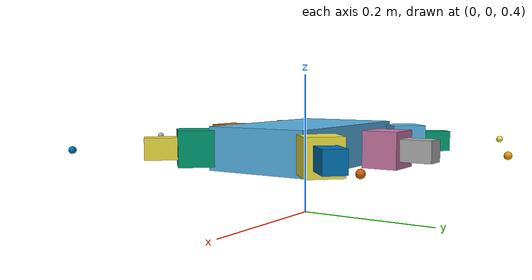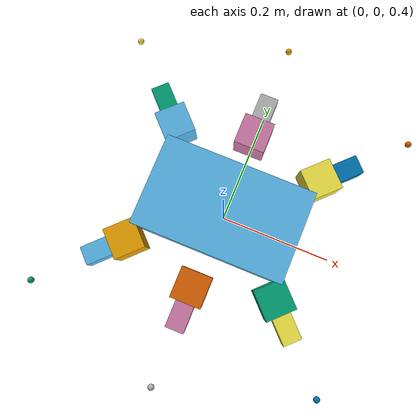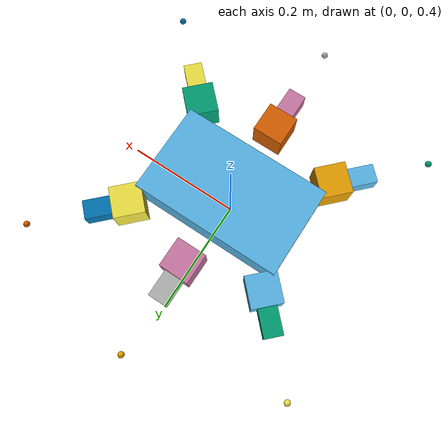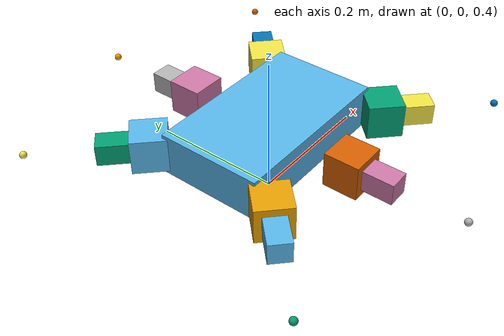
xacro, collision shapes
<?xml version="1.0" encoding="UTF-8" ?>
<robot xmlns:xacro="http://ros.org/wiki/xacro" name="Golem">

<link name="base_footprint"/>

<joint name="base_joint" type="fixed">
    <parent link="base_footprint"/><child link="base_link"/>
    <origin xyz="0 0 0.5" rpy="0 0 0"/>
</joint>

<link name="base_link">
    <visual><geometry><mesh filename="file:///root/colcon_ws/src/hexapod_description/meshes/phantomX/body.stl" scale="0.001 0.001 0.001"/></geometry></visual>
    <collision><geometry><box size="0.25 0.15 0.06"/></geometry></collision>
    <inertial><mass value="1.0"/> <inertia ixx="0.01" ixy="0" ixz="0" iyy="0.01" iyz="0" izz="0.02"/></inertial>
</link>

<xacro:macro name="leg" params="side position x y angle">

    <joint name="coxa_joint_${side}${position}" type="revolute">
        <parent link="base_link"/><child link="coxa_${side}${position}"/><origin xyz="${x} ${y} 0" rpy="0 0 ${angle}"/><axis xyz="0 0 1"/>
        <limit lower="-1.57" upper="1.57" effort="200.0" velocity="2.0"/>
        <dynamics damping="0.5" friction="0.2"/>
    </joint>

    <link name="coxa_${side}${position}">
        <visual><geometry><mesh filename="file:///root/colcon_ws/src/hexapod_description/meshes/phantomX/coxa.stl" scale="0.001 0.001 0.001"/></geometry></visual>
        <collision><geometry><box size="0.05 0.05 0.05"/></geometry></collision>
        <inertial><mass value="0.05"/><inertia ixx="0.0001" ixy="0" ixz="0" iyy="0.0001" iyz="0" izz="0.0001"/></inertial>
    </link>

    <joint name="femur_joint_${side}${position}" type="revolute">
        <origin xyz="0.029 0 0" rpy="-1.5707 0 0"/><parent link="coxa_${side}${position}"/><child link="femur_${side}${position}"/><axis xyz="0 0 1"/>
        <limit lower="-1.57" upper="1.57" effort="200.0" velocity="2.0"/>
        <dynamics damping="0.5" friction="0.2"/>
    </joint>

    <link name="femur_${side}${position}">
        <visual><geometry><mesh filename="file:///root/colcon_ws/src/hexapod_description/meshes/phantomX/femur.stl" scale="0.001 0.001 0.001"/></geometry></visual>
        <collision><geometry><box size="0.08 0.03 0.03"/></geometry></collision>
        <inertial><mass value="0.05"/><inertia ixx="0.0001" ixy="0" ixz="0" iyy="0.0001" iyz="0" izz="0.0001"/></inertial>
    </link>

    <joint name="tibia_joint_${side}${position}" type="revolute">
        <origin xyz="0.082 0 0" rpy="0 0 0"/><parent link="femur_${side}${position}"/><child link="tibia_${side}${position}"/><axis xyz="0 0 1"/>
        <limit lower="-1.57" upper="1.57" effort="200.0" velocity="2.0"/>
        <dynamics damping="0.5" friction="0.2"/>
    </joint>

    <link name="tibia_${side}${position}">
        <visual><geometry><mesh filename="file:///root/colcon_ws/src/hexapod_description/meshes/phantomX/tibia.stl" scale="0.001 0.001 0.001"/></geometry></visual>
        <collision><origin xyz="0.05 0 0" rpy="0 0 0"/> <geometry><sphere radius="0.005"/></geometry> </collision>
        <inertial><mass value="0.05"/><inertia ixx="0.0001" ixy="0" ixz="0" iyy="0.0001" iyz="0" izz="0.0001"/></inertial>
    </link>

    <gazebo reference="tibia_${side}${position}">
        <mu1>2.0</mu1><mu2>2.0</mu2>
        <kp>50000.0</kp>
        <kd>10.0</kd>
        <minDepth>0.001</minDepth>
        <maxVel>0.0</maxVel>
    </gazebo>
</xacro:macro>

<xacro:leg side="R" position="F" x="0.124" y="-0.10" angle="-0.785"/>
<xacro:leg side="R" position="M" x="0.0" y="-0.13" angle="-1.57"/>
<xacro:leg side="R" position="R" x="-0.124" y="-0.10" angle="-2.35"/>
<xacro:leg side="L" position="F" x="0.124" y="0.10" angle="0.785"/>
<xacro:leg side="L" position="M" x="0.0" y="0.13" angle="1.57"/>
<xacro:leg side="L" position="R" x="-0.124" y="0.10" angle="2.35"/>

<ros2_control name="GazeboSystem" type="system">
    <hardware><plugin>gazebo_ros2_control/GazeboSystem</plugin></hardware>
    <xacro:macro name="j" params="n"><joint name="${n}"><command_interface name="position"/><state_interface name="position"/><state_interface name="velocity"/></joint></xacro:macro>
    <xacro:j n="coxa_joint_RF"/><xacro:j n="femur_joint_RF"/><xacro:j n="tibia_joint_RF"/>
    <xacro:j n="coxa_joint_LF"/><xacro:j n="femur_joint_LF"/><xacro:j n="tibia_joint_LF"/>
    <xacro:j n="coxa_joint_RM"/><xacro:j n="femur_joint_RM"/><xacro:j n="tibia_joint_RM"/>
    <xacro:j n="coxa_joint_LM"/><xacro:j n="femur_joint_LM"/><xacro:j n="tibia_joint_LM"/>
    <xacro:j n="coxa_joint_RR"/><xacro:j n="femur_joint_RR"/><xacro:j n="tibia_joint_RR"/>
    <xacro:j n="coxa_joint_LR"/><xacro:j n="femur_joint_LR"/><xacro:j n="tibia_joint_LR"/>
</ros2_control>

<gazebo>
    <plugin name="gazebo_ros2_control" filename="libgazebo_ros2_control.so">
        <parameters>/root/colcon_ws/src/hexapod_gazebo/config/phantomx_control.yaml</parameters>
    </plugin>
</gazebo>

<link name="lidar_link">
    <inertial><mass value="0.05"/><inertia ixx="0.001" ixy="0" ixz="0" iyy="0.001" iyz="0" izz="0.001"/></inertial>
    <visual><geometry><cylinder radius="0.05" length="0.04"/></geometry></visual>
</link>

<joint name="lidar_joint" type="fixed">
    <parent link="base_link"/><child link="lidar_link"/><origin xyz="0 0 0.1" rpy="0 0 0"/>
</joint>

<gazebo reference="lidar_link">
    <sensor name="lidar" type="ray">
        <pose>0 0 0 0 0 0</pose>
        <always_on>true</always_on>
        <update_rate>10</update_rate>
        <ray>
            <scan><horizontal><samples>360</samples><resolution>1</resolution><min_angle>-3.14</min_angle><max_angle>3.14</max_angle></horizontal></scan>
            <range><min>0.3</min><max>12.0</max><resolution>0.01</resolution></range>
        </ray>
        <plugin name="gazebo_ros_laser_controller" filename="libgazebo_ros_ray_sensor.so">
            <ros><remapping>~/out:=scan</remapping></ros>
            <output_type>sensor_msgs/LaserScan</output_type>
            <frame_name>lidar_link</frame_name>
        </plugin>
    </sensor>
</gazebo>

<gazebo>
  <plugin name="gazebo_ros_p3d" filename="libgazebo_ros_p3d.so">
    <ros>
      <namespace>/</namespace>
      <remapping>odom:=odom</remapping>
    </ros>
    <body_name>base_footprint</body_name> <frame_name>world</frame_name>
    <update_rate>50</update_rate>
    <xyz_offset>0 0 0</xyz_offset>
    <rpy_offset>0 0 0</rpy_offset>
    <gaussian_noise>0.01</gaussian_noise>
  </plugin>
</gazebo>

<gazebo>
  <plugin name="gazebo_ros_state" filename="libgazebo_ros_state.so">
    <ros>
      <namespace>/</namespace>
      <remapping>model_states:=model_states</remapping>
    </ros>
    <update_rate>50.0</update_rate>
  </plugin>
</gazebo>

</robot>
